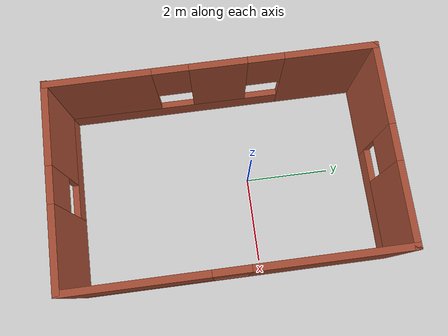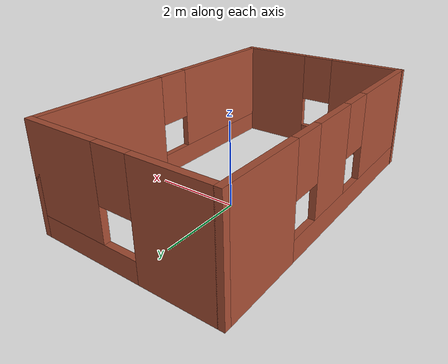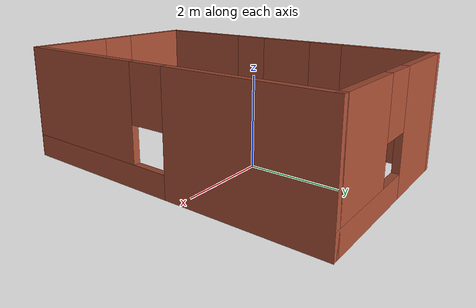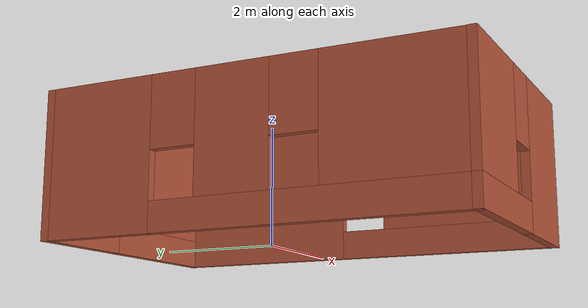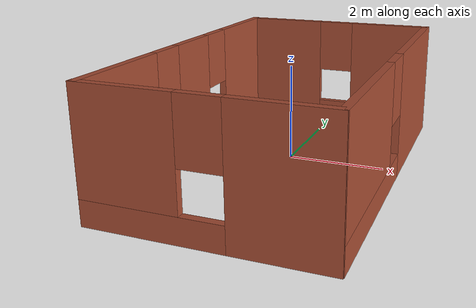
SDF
<?xml version='1.0'?>
<sdf version='1.7'>
  <model name='room'>
    <pose>0.0925 -0.5945 0 0 -0 0</pose>
    <link name='Wall_0'>
      <pose>-2.1695 0.0115 0 0 -0 -1.5708</pose>
      <visual name='Wall_0_Visual_0'>
        <pose>-2.5985 0 1.25 0 -0 0</pose>
        <geometry>
          <box>
            <size>2.053 0.15 2.5</size>
          </box>
        </geometry>
        <material>
          <script>
            <uri>file://media/materials/scripts/gazebo.material</uri>
            <name>Gazebo/Bricks</name>
          </script>
          <ambient>1 1 1 1</ambient>
        </material>
        <meta>
          <layer>0</layer>
        </meta>
      </visual>
      <collision name='Wall_0_Collision_0'>
        <geometry>
          <box>
            <size>2.053 0.15 2.5</size>
          </box>
        </geometry>
        <pose>-2.5985 0 1.25 0 -0 0</pose>
      </collision>
      <visual name='Wall_0_Visual_1'>
        <pose>1.0265 0 0.25 0 -0 0</pose>
        <geometry>
          <box>
            <size>5.197 0.15 0.5</size>
          </box>
        </geometry>
        <material>
          <script>
            <uri>file://media/materials/scripts/gazebo.material</uri>
            <name>Gazebo/Bricks</name>
          </script>
          <ambient>1 1 1 1</ambient>
        </material>
        <meta>
          <layer>0</layer>
        </meta>
      </visual>
      <collision name='Wall_0_Collision_1'>
        <geometry>
          <box>
            <size>5.197 0.15 0.5</size>
          </box>
        </geometry>
        <pose>1.0265 0 0.25 0 -0 0</pose>
      </collision>
      <visual name='Wall_0_Visual_2'>
        <pose>-0.137 0 1.5 0 -0 0</pose>
        <geometry>
          <box>
            <size>1.27 0.15 2</size>
          </box>
        </geometry>
        <material>
          <script>
            <uri>file://media/materials/scripts/gazebo.material</uri>
            <name>Gazebo/Bricks</name>
          </script>
          <ambient>1 1 1 1</ambient>
        </material>
        <meta>
          <layer>0</layer>
        </meta>
      </visual>
      <collision name='Wall_0_Collision_2'>
        <geometry>
          <box>
            <size>1.27 0.15 2</size>
          </box>
        </geometry>
        <pose>-0.137 0 1.5 0 -0 0</pose>
      </collision>
      <visual name='Wall_0_Visual_3'>
        <pose>2.4615 0 1.5 0 -0 0</pose>
        <geometry>
          <box>
            <size>2.327 0.15 2</size>
          </box>
        </geometry>
        <material>
          <script>
            <uri>file://media/materials/scripts/gazebo.material</uri>
            <name>Gazebo/Bricks</name>
          </script>
          <ambient>1 1 1 1</ambient>
        </material>
        <meta>
          <layer>0</layer>
        </meta>
      </visual>
      <collision name='Wall_0_Collision_3'>
        <geometry>
          <box>
            <size>2.327 0.15 2</size>
          </box>
        </geometry>
        <pose>2.4615 0 1.5 0 -0 0</pose>
      </collision>
      <visual name='Wall_0_Visual_4'>
        <pose>-1.172 0 1.9 0 -0 0</pose>
        <geometry>
          <box>
            <size>0.8 0.15 1.2</size>
          </box>
        </geometry>
        <material>
          <script>
            <uri>file://media/materials/scripts/gazebo.material</uri>
            <name>Gazebo/Bricks</name>
          </script>
          <ambient>1 1 1 1</ambient>
        </material>
        <meta>
          <layer>0</layer>
        </meta>
      </visual>
      <collision name='Wall_0_Collision_4'>
        <geometry>
          <box>
            <size>0.8 0.15 1.2</size>
          </box>
        </geometry>
        <pose>-1.172 0 1.9 0 -0 0</pose>
      </collision>
      <visual name='Wall_0_Visual_5'>
        <pose>0.898 0 1.9 0 -0 0</pose>
        <geometry>
          <box>
            <size>0.8 0.15 1.2</size>
          </box>
        </geometry>
        <material>
          <script>
            <uri>file://media/materials/scripts/gazebo.material</uri>
            <name>Gazebo/Bricks</name>
          </script>
          <ambient>1 1 1 1</ambient>
        </material>
        <meta>
          <layer>0</layer>
        </meta>
      </visual>
      <collision name='Wall_0_Collision_5'>
        <geometry>
          <box>
            <size>0.8 0.15 1.2</size>
          </box>
        </geometry>
        <pose>0.898 0 1.9 0 -0 0</pose>
      </collision>
    </link>
    <link name='Wall_10'>
      <pose>0.0055 3.5615 0 0 -0 0</pose>
      <visual name='Wall_10_Visual_0'>
        <pose>-1.314 0 1.25 0 -0 0</pose>
        <geometry>
          <box>
            <size>1.872 0.15 2.5</size>
          </box>
        </geometry>
        <material>
          <script>
            <uri>file://media/materials/scripts/gazebo.material</uri>
            <name>Gazebo/Bricks</name>
          </script>
          <ambient>1 1 1 1</ambient>
        </material>
        <meta>
          <layer>0</layer>
        </meta>
      </visual>
      <collision name='Wall_10_Collision_0'>
        <geometry>
          <box>
            <size>1.872 0.15 2.5</size>
          </box>
        </geometry>
        <pose>-1.314 0 1.25 0 -0 0</pose>
      </collision>
      <visual name='Wall_10_Visual_1'>
        <pose>0.936 0 0.25 0 -0 0</pose>
        <geometry>
          <box>
            <size>2.628 0.15 0.5</size>
          </box>
        </geometry>
        <material>
          <script>
            <uri>file://media/materials/scripts/gazebo.material</uri>
            <name>Gazebo/Bricks</name>
          </script>
          <ambient>1 1 1 1</ambient>
        </material>
        <meta>
          <layer>0</layer>
        </meta>
      </visual>
      <collision name='Wall_10_Collision_1'>
        <geometry>
          <box>
            <size>2.628 0.15 0.5</size>
          </box>
        </geometry>
        <pose>0.936 0 0.25 0 -0 0</pose>
      </collision>
      <visual name='Wall_10_Visual_2'>
        <pose>1.336 0 1.5 0 -0 0</pose>
        <geometry>
          <box>
            <size>1.828 0.15 2</size>
          </box>
        </geometry>
        <material>
          <script>
            <uri>file://media/materials/scripts/gazebo.material</uri>
            <name>Gazebo/Bricks</name>
          </script>
          <ambient>1 1 1 1</ambient>
        </material>
        <meta>
          <layer>0</layer>
        </meta>
      </visual>
      <collision name='Wall_10_Collision_2'>
        <geometry>
          <box>
            <size>1.828 0.15 2</size>
          </box>
        </geometry>
        <pose>1.336 0 1.5 0 -0 0</pose>
      </collision>
      <visual name='Wall_10_Visual_3'>
        <pose>0.022 0 1.9 0 -0 0</pose>
        <geometry>
          <box>
            <size>0.8 0.15 1.2</size>
          </box>
        </geometry>
        <material>
          <script>
            <uri>file://media/materials/scripts/gazebo.material</uri>
            <name>Gazebo/Bricks</name>
          </script>
          <ambient>1 1 1 1</ambient>
        </material>
        <meta>
          <layer>0</layer>
        </meta>
      </visual>
      <collision name='Wall_10_Collision_3'>
        <geometry>
          <box>
            <size>0.8 0.15 1.2</size>
          </box>
        </geometry>
        <pose>0.022 0 1.9 0 -0 0</pose>
      </collision>
    </link>
    <link name='Wall_11'>
      <pose>2.1805 0.0115 0 0 -0 -1.5708</pose>
      <visual name='Wall_11_Visual_0'>
        <pose>-1.943 0 1.25 0 -0 0</pose>
        <geometry>
          <box>
            <size>3.364 0.15 2.5</size>
          </box>
        </geometry>
        <material>
          <script>
            <uri>file://media/materials/scripts/gazebo.material</uri>
            <name>Gazebo/Bricks</name>
          </script>
          <ambient>1 1 1 1</ambient>
        </material>
        <meta>
          <layer>0</layer>
        </meta>
      </visual>
      <collision name='Wall_11_Collision_0'>
        <geometry>
          <box>
            <size>3.364 0.15 2.5</size>
          </box>
        </geometry>
        <pose>-1.943 0 1.25 0 -0 0</pose>
      </collision>
      <visual name='Wall_11_Visual_1'>
        <pose>1.682 0 0.25 0 -0 0</pose>
        <geometry>
          <box>
            <size>3.886 0.15 0.5</size>
          </box>
        </geometry>
        <material>
          <script>
            <uri>file://media/materials/scripts/gazebo.material</uri>
            <name>Gazebo/Bricks</name>
          </script>
          <ambient>1 1 1 1</ambient>
        </material>
        <meta>
          <layer>0</layer>
        </meta>
      </visual>
      <collision name='Wall_11_Collision_1'>
        <geometry>
          <box>
            <size>3.886 0.15 0.5</size>
          </box>
        </geometry>
        <pose>1.682 0 0.25 0 -0 0</pose>
      </collision>
      <visual name='Wall_11_Visual_2'>
        <pose>2.082 0 1.5 0 -0 0</pose>
        <geometry>
          <box>
            <size>3.086 0.15 2</size>
          </box>
        </geometry>
        <material>
          <script>
            <uri>file://media/materials/scripts/gazebo.material</uri>
            <name>Gazebo/Bricks</name>
          </script>
          <ambient>1 1 1 1</ambient>
        </material>
        <meta>
          <layer>0</layer>
        </meta>
      </visual>
      <collision name='Wall_11_Collision_2'>
        <geometry>
          <box>
            <size>3.086 0.15 2</size>
          </box>
        </geometry>
        <pose>2.082 0 1.5 0 -0 0</pose>
      </collision>
      <visual name='Wall_11_Visual_3'>
        <pose>0.139 0 1.9 0 -0 0</pose>
        <geometry>
          <box>
            <size>0.8 0.15 1.2</size>
          </box>
        </geometry>
        <material>
          <script>
            <uri>file://media/materials/scripts/gazebo.material</uri>
            <name>Gazebo/Bricks</name>
          </script>
          <ambient>1 1 1 1</ambient>
        </material>
        <meta>
          <layer>0</layer>
        </meta>
      </visual>
      <collision name='Wall_11_Collision_3'>
        <geometry>
          <box>
            <size>0.8 0.15 1.2</size>
          </box>
        </geometry>
        <pose>0.139 0 1.9 0 -0 0</pose>
      </collision>
    </link>
    <link name='Wall_4'>
      <pose>-0.0055 -3.5615 0 0 -0 3.14159</pose>
      <visual name='Wall_4_Visual_0'>
        <pose>-1.33 0 1.25 0 -0 0</pose>
        <geometry>
          <box>
            <size>1.84 0.15 2.5</size>
          </box>
        </geometry>
        <material>
          <script>
            <uri>file://media/materials/scripts/gazebo.material</uri>
            <name>Gazebo/Bricks</name>
          </script>
          <ambient>1 1 1 1</ambient>
        </material>
        <meta>
          <layer>0</layer>
        </meta>
      </visual>
      <collision name='Wall_4_Collision_0'>
        <geometry>
          <box>
            <size>1.84 0.15 2.5</size>
          </box>
        </geometry>
        <pose>-1.33 0 1.25 0 -0 0</pose>
      </collision>
      <visual name='Wall_4_Visual_1'>
        <pose>0.92 0 0.25 0 -0 0</pose>
        <geometry>
          <box>
            <size>2.66 0.15 0.5</size>
          </box>
        </geometry>
        <material>
          <script>
            <uri>file://media/materials/scripts/gazebo.material</uri>
            <name>Gazebo/Bricks</name>
          </script>
          <ambient>1 1 1 1</ambient>
        </material>
        <meta>
          <layer>0</layer>
        </meta>
      </visual>
      <collision name='Wall_4_Collision_1'>
        <geometry>
          <box>
            <size>2.66 0.15 0.5</size>
          </box>
        </geometry>
        <pose>0.92 0 0.25 0 -0 0</pose>
      </collision>
      <visual name='Wall_4_Visual_2'>
        <pose>1.32 0 1.5 0 -0 0</pose>
        <geometry>
          <box>
            <size>1.86 0.15 2</size>
          </box>
        </geometry>
        <material>
          <script>
            <uri>file://media/materials/scripts/gazebo.material</uri>
            <name>Gazebo/Bricks</name>
          </script>
          <ambient>1 1 1 1</ambient>
        </material>
        <meta>
          <layer>0</layer>
        </meta>
      </visual>
      <collision name='Wall_4_Collision_2'>
        <geometry>
          <box>
            <size>1.86 0.15 2</size>
          </box>
        </geometry>
        <pose>1.32 0 1.5 0 -0 0</pose>
      </collision>
      <visual name='Wall_4_Visual_3'>
        <pose>-0.01 0 1.9 0 -0 0</pose>
        <geometry>
          <box>
            <size>0.8 0.15 1.2</size>
          </box>
        </geometry>
        <material>
          <script>
            <uri>file://media/materials/scripts/gazebo.material</uri>
            <name>Gazebo/Bricks</name>
          </script>
          <ambient>1 1 1 1</ambient>
        </material>
        <meta>
          <layer>0</layer>
        </meta>
      </visual>
      <collision name='Wall_4_Collision_3'>
        <geometry>
          <box>
            <size>0.8 0.15 1.2</size>
          </box>
        </geometry>
        <pose>-0.01 0 1.9 0 -0 0</pose>
      </collision>
    </link>
    <static>1</static>
  </model>
</sdf>
